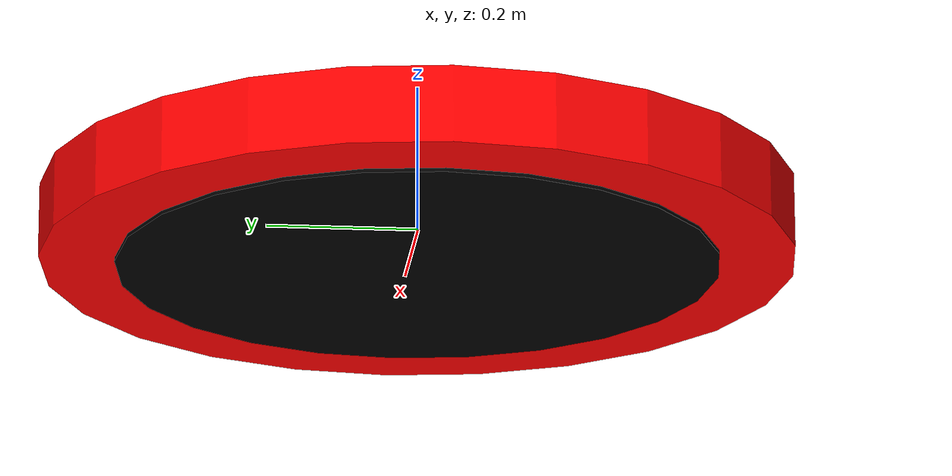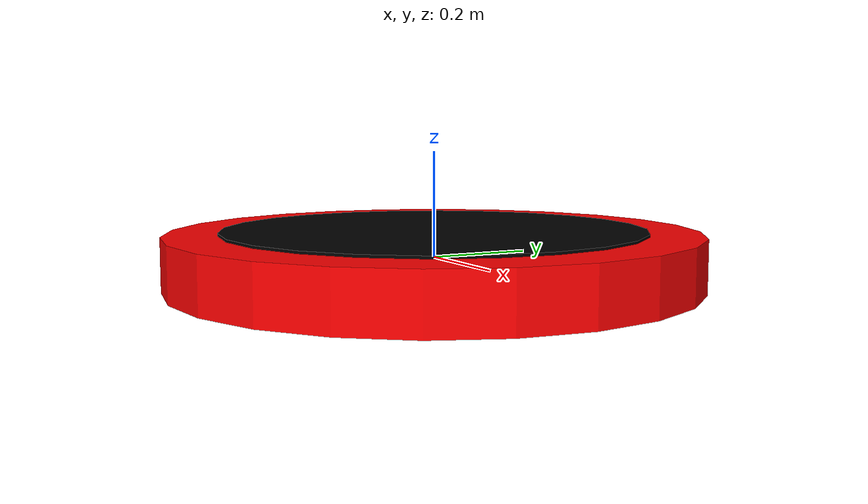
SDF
<?xml version="1.0"?>
<sdf version="1.6">
  <model name="finish_marker">
    <static>true</static>
    <link name="marker">
      <visual name="ring">
        <pose>0 0 0 0 0 0</pose>
        <geometry>
          <cylinder>
            <radius>0.5</radius>
            <length>0.1</length>
          </cylinder>
        </geometry>
        <material>
          <ambient>1.0 0.0 0.0 1</ambient>
          <diffuse>1.0 0.0 0.0 1</diffuse>
          <emissive>0.5 0.0 0.0 1</emissive>
        </material>
      </visual>
      <visual name="inner_ring">
        <pose>0 0 0 0 0 0</pose>
        <geometry>
          <cylinder>
            <radius>0.4</radius>
            <length>0.11</length>
          </cylinder>
        </geometry>
        <material>
          <ambient>0 0 0 1</ambient>
          <diffuse>0 0 0 1</diffuse>
        </material>
      </visual>
    </link>
  </model>
</sdf>
